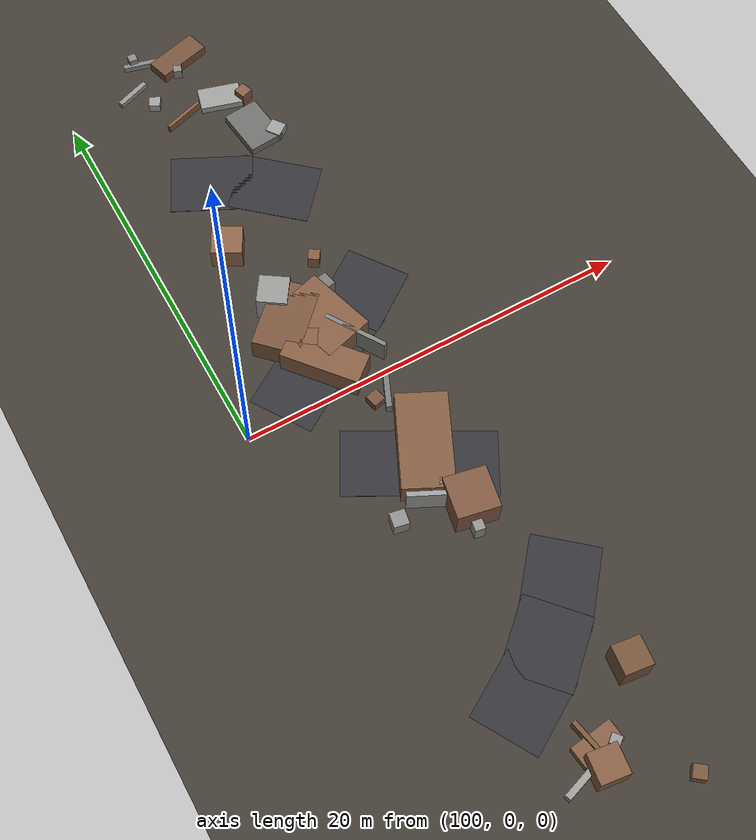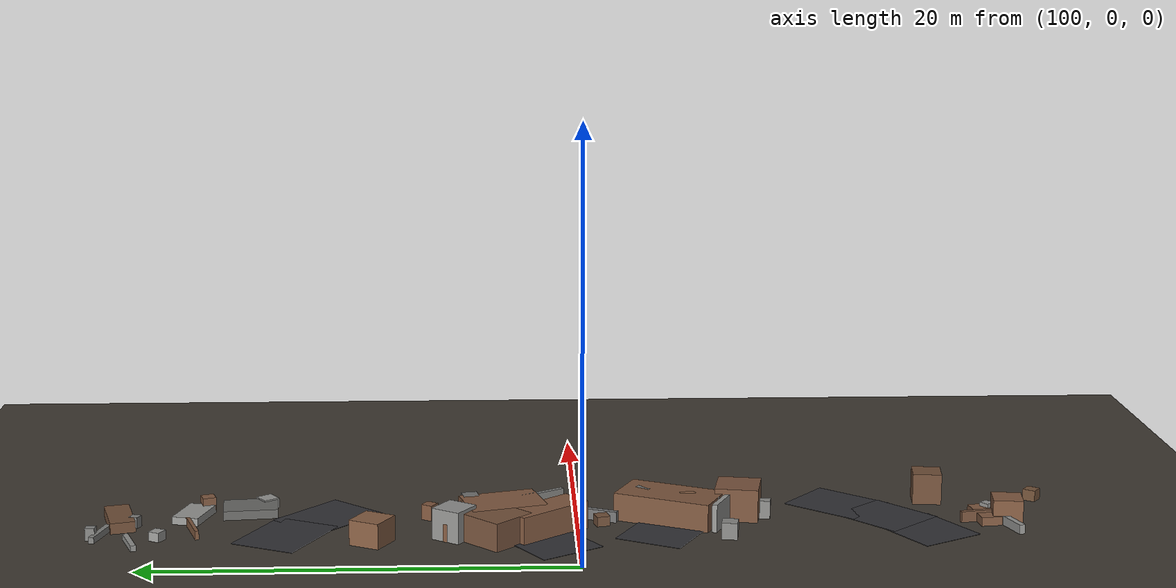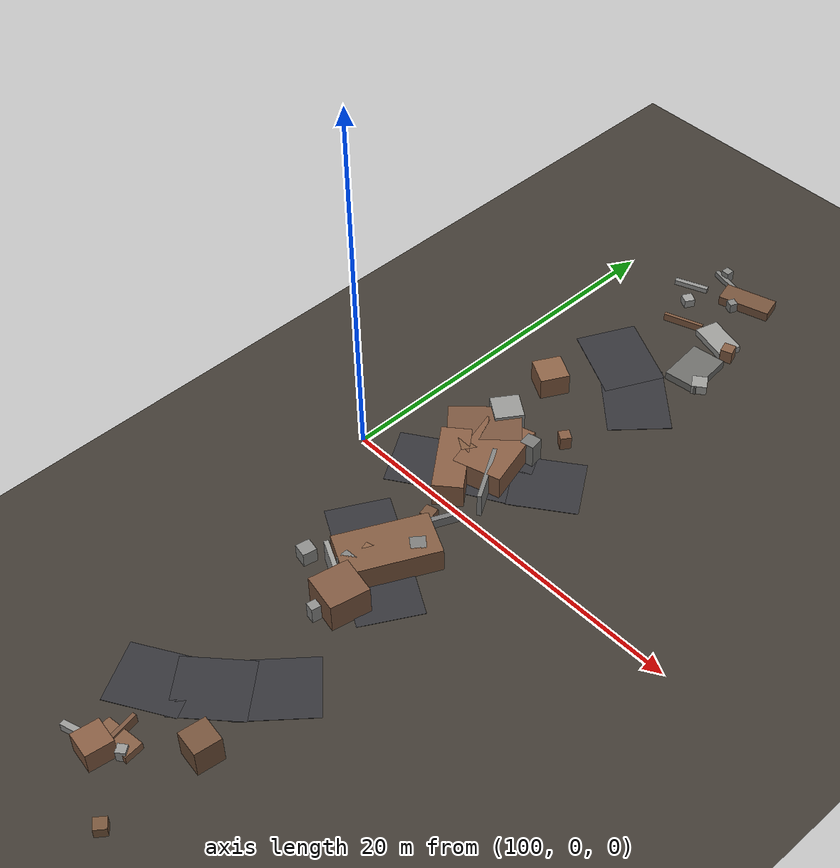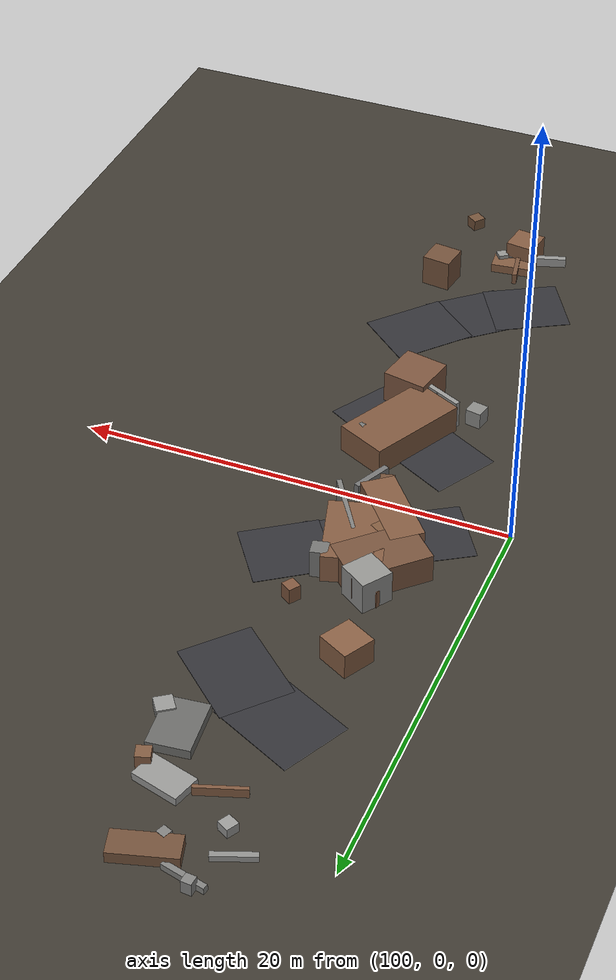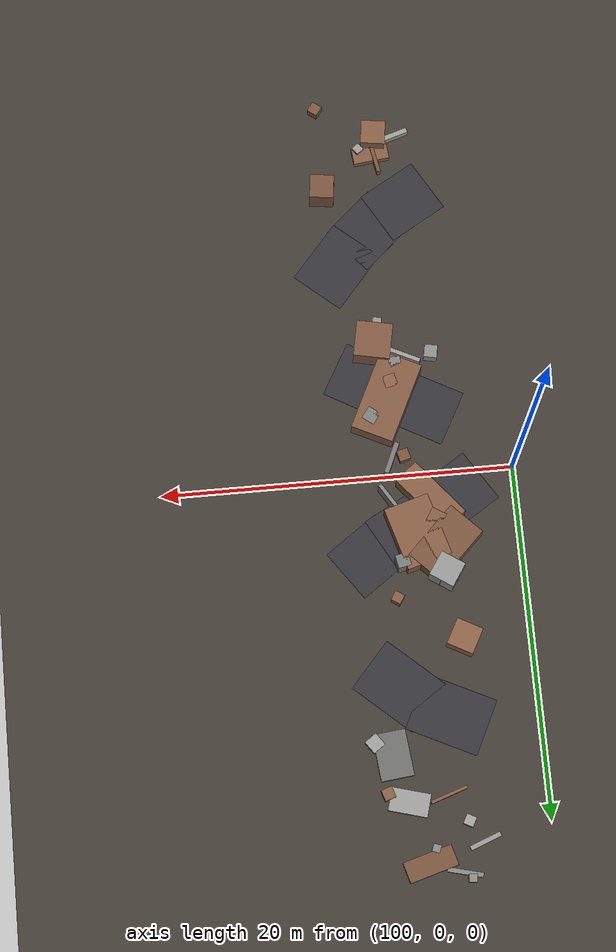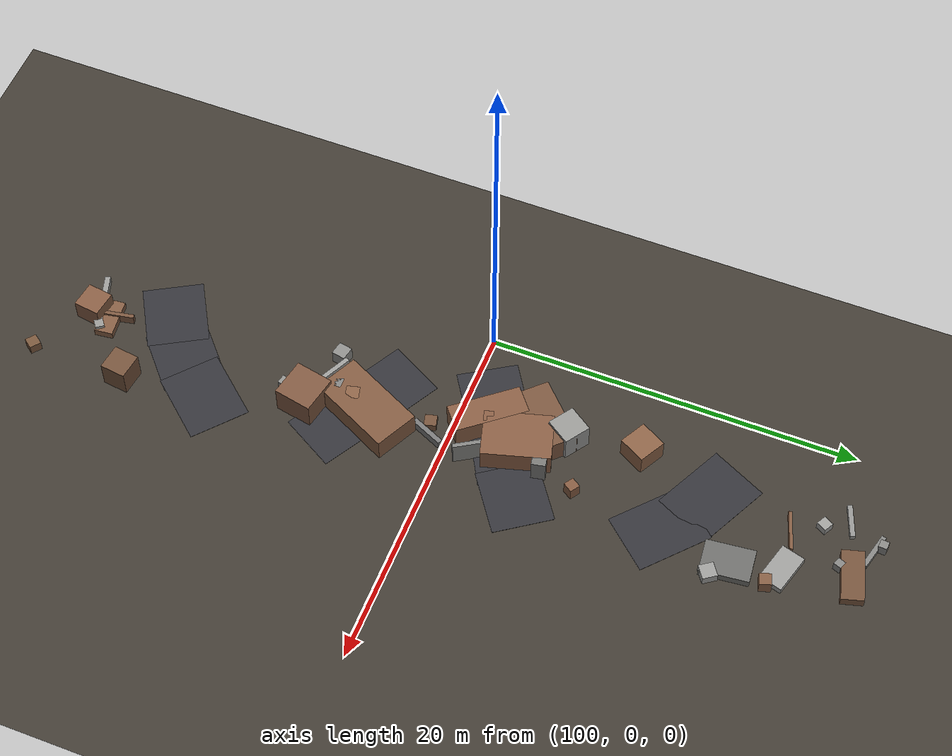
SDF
<sdf version="1.6">
 <world name="navitas_arena">
  <model name="ground_plane">
   <static>true</static>
   <link name="link">
    <collision name="collision">
     <geometry><plane><normal>0 0 1</normal><size>400 400</size></plane></geometry>
     <surface><friction><ode><mu>0.620</mu><mu2>0.620</mu2></ode></friction></surface>
    </collision>
    <visual name="visual">
     <cast_shadows>false</cast_shadows>
     <geometry><plane><normal>0 0 1</normal><size>400 400</size></plane></geometry>
     <material><ambient>0.250 0.230 0.200 1</ambient><diffuse>0.250 0.230 0.200 1</diffuse></material>
    </visual>
   </link>
  </model>
  <model name="road_zor_3_4">
   <static>true</static>
   <pose>104.655 -16.469 0.040 0 0 0.526</pose>
   <link name="link">
    <collision name="col"><geometry><box><size>3.635 3.280 0.020</size></box></geometry></collision>
    <visual name="vis">
     <geometry><box><size>3.635 3.280 0.020</size></box></geometry>
     <material><ambient>0.20 0.20 0.22 1</ambient><diffuse>0.20 0.20 0.22 1</diffuse></material>
    </visual>
   </link>
  </model>
  <model name="road_zor_3_5">
   <static>true</static>
   <pose>106.845 -14.880 0.040 0 0 0.731</pose>
   <link name="link">
    <collision name="col"><geometry><box><size>3.603 3.280 0.020</size></box></geometry></collision>
    <visual name="vis">
     <geometry><box><size>3.603 3.280 0.020</size></box></geometry>
     <material><ambient>0.20 0.20 0.22 1</ambient><diffuse>0.20 0.20 0.22 1</diffuse></material>
    </visual>
   </link>
  </model>
  <model name="road_zor_3_6">
   <static>true</static>
   <pose>108.842 -12.817 0.040 0 0 0.864</pose>
   <link name="link">
    <collision name="col"><geometry><box><size>3.953 3.280 0.020</size></box></geometry></collision>
    <visual name="vis">
     <geometry><box><size>3.953 3.280 0.020</size></box></geometry>
     <material><ambient>0.20 0.20 0.22 1</ambient><diffuse>0.20 0.20 0.22 1</diffuse></material>
    </visual>
   </link>
  </model>
  <model name="road_zor_3_9">
   <static>true</static>
   <pose>107.724 -5.667 0.040 0 0 2.625</pose>
   <link name="link">
    <collision name="col"><geometry><box><size>4.051 3.280 0.020</size></box></geometry></collision>
    <visual name="vis">
     <geometry><box><size>4.051 3.280 0.020</size></box></geometry>
     <material><ambient>0.20 0.20 0.22 1</ambient><diffuse>0.20 0.20 0.22 1</diffuse></material>
    </visual>
   </link>
  </model>
  <model name="road_zor_3_10">
   <static>true</static>
   <pose>104.917 -4.111 0.040 0 0 2.646</pose>
   <link name="link">
    <collision name="col"><geometry><box><size>4.169 3.280 0.020</size></box></geometry></collision>
    <visual name="vis">
     <geometry><box><size>4.169 3.280 0.020</size></box></geometry>
     <material><ambient>0.20 0.20 0.22 1</ambient><diffuse>0.20 0.20 0.22 1</diffuse></material>
    </visual>
   </link>
  </model>
  <model name="road_zor_3_13">
   <static>true</static>
   <pose>103.404 1.333 0.040 0 0 0.571</pose>
   <link name="link">
    <collision name="col"><geometry><box><size>3.776 3.280 0.020</size></box></geometry></collision>
    <visual name="vis">
     <geometry><box><size>3.776 3.280 0.020</size></box></geometry>
     <material><ambient>0.20 0.20 0.22 1</ambient><diffuse>0.20 0.20 0.22 1</diffuse></material>
    </visual>
   </link>
  </model>
  <model name="road_zor_3_14">
   <static>true</static>
   <pose>106.021 2.889 0.040 0 0 0.505</pose>
   <link name="link">
    <collision name="col"><geometry><box><size>4.117 3.280 0.020</size></box></geometry></collision>
    <visual name="vis">
     <geometry><box><size>4.117 3.280 0.020</size></box></geometry>
     <material><ambient>0.20 0.20 0.22 1</ambient><diffuse>0.20 0.20 0.22 1</diffuse></material>
    </visual>
   </link>
  </model>
  <model name="road_zor_3_15">
   <static>true</static>
   <pose>108.522 4.444 0.040 0 0 0.618</pose>
   <link name="link">
    <collision name="col"><geometry><box><size>3.583 3.280 0.020</size></box></geometry></collision>
    <visual name="vis">
     <geometry><box><size>3.583 3.280 0.020</size></box></geometry>
     <material><ambient>0.20 0.20 0.22 1</ambient><diffuse>0.20 0.20 0.22 1</diffuse></material>
    </visual>
   </link>
  </model>
  <model name="road_zor_3_18">
   <static>true</static>
   <pose>107.574 11.926 0.040 0 0 2.416</pose>
   <link name="link">
    <collision name="col"><geometry><box><size>4.138 3.280 0.020</size></box></geometry></collision>
    <visual name="vis">
     <geometry><box><size>4.138 3.280 0.020</size></box></geometry>
     <material><ambient>0.20 0.20 0.22 1</ambient><diffuse>0.20 0.20 0.22 1</diffuse></material>
    </visual>
   </link>
  </model>
  <model name="road_zor_3_19">
   <static>true</static>
   <pose>104.878 13.717 0.040 0 0 2.691</pose>
   <link name="link">
    <collision name="col"><geometry><box><size>4.197 3.280 0.020</size></box></geometry></collision>
    <visual name="vis">
     <geometry><box><size>4.197 3.280 0.020</size></box></geometry>
     <material><ambient>0.20 0.20 0.22 1</ambient><diffuse>0.20 0.20 0.22 1</diffuse></material>
    </visual>
   </link>
  </model>
  <model name="blk_zor_3_0_0">
   <static>true</static>
   <pose>106.268 -7.143 0.675 0 0 2.692</pose>
   <link name="link">
    <collision name="col"><geometry><box><size>3.512 0.243 1.350</size></box></geometry></collision>
    <visual name="vis">
     <geometry><box><size>3.512 0.243 1.350</size></box></geometry>
     <material><ambient>0.60 0.60 0.59 1</ambient><diffuse>0.60 0.60 0.59 1</diffuse></material>
    </visual>
   </link>
  </model>
  <model name="blk_zor_3_0_1">
   <static>true</static>
   <pose>106.129 -6.377 0.675 0 0 0.029</pose>
   <link name="link">
    <collision name="col"><geometry><box><size>0.681 0.681 1.350</size></box></geometry></collision>
    <visual name="vis">
     <geometry><box><size>0.681 0.681 1.350</size></box></geometry>
     <material><ambient>0.50 0.50 0.49 1</ambient><diffuse>0.50 0.50 0.49 1</diffuse></material>
    </visual>
   </link>
  </model>
  <model name="blk_zor_3_0_2">
   <static>true</static>
   <pose>106.498 -5.330 0.675 0 0 0.261</pose>
   <link name="link">
    <collision name="col"><geometry><box><size>0.713 0.713 1.350</size></box></geometry></collision>
    <visual name="vis">
     <geometry><box><size>0.713 0.713 1.350</size></box></geometry>
     <material><ambient>0.54 0.38 0.27 1</ambient><diffuse>0.54 0.38 0.27 1</diffuse></material>
    </visual>
   </link>
  </model>
  <model name="blk_zor_3_0_3">
   <static>true</static>
   <pose>106.768 -4.456 0.675 0 0 1.118</pose>
   <link name="link">
    <collision name="col"><geometry><box><size>4.788 2.481 1.350</size></box></geometry></collision>
    <visual name="vis">
     <geometry><box><size>4.788 2.481 1.350</size></box></geometry>
     <material><ambient>0.50 0.35 0.25 1</ambient><diffuse>0.50 0.35 0.25 1</diffuse></material>
    </visual>
   </link>
  </model>
  <model name="blk_zor_3_0_4">
   <static>true</static>
   <pose>107.229 -7.767 0.801 0 0 2.947</pose>
   <link name="link">
    <collision name="col"><geometry><box><size>2.072 2.072 1.602</size></box></geometry></collision>
    <visual name="vis">
     <geometry><box><size>2.072 2.072 1.602</size></box></geometry>
     <material><ambient>0.49 0.34 0.25 1</ambient><diffuse>0.49 0.34 0.25 1</diffuse></material>
    </visual>
   </link>
  </model>
  <model name="blk_zor_3_0_5">
   <static>true</static>
   <pose>107.744 -3.384 0.675 0 0 2.484</pose>
   <link name="link">
    <collision name="col"><geometry><box><size>0.771 0.771 1.350</size></box></geometry></collision>
    <visual name="vis">
     <geometry><box><size>0.771 0.771 1.350</size></box></geometry>
     <material><ambient>0.48 0.48 0.47 1</ambient><diffuse>0.48 0.48 0.47 1</diffuse></material>
    </visual>
   </link>
  </model>
  <model name="blk_zor_3_1_0">
   <static>true</static>
   <pose>106.743 5.083 0.675 0 0 0.196</pose>
   <link name="link">
    <collision name="col"><geometry><box><size>0.748 0.748 1.350</size></box></geometry></collision>
    <visual name="vis">
     <geometry><box><size>0.748 0.748 1.350</size></box></geometry>
     <material><ambient>0.46 0.46 0.45 1</ambient><diffuse>0.46 0.46 0.45 1</diffuse></material>
    </visual>
   </link>
  </model>
  <model name="blk_zor_3_1_1">
   <static>true</static>
   <pose>104.291 4.302 0.675 0 0 0.781</pose>
   <link name="link">
    <collision name="col"><geometry><box><size>3.689 2.314 1.350</size></box></geometry></collision>
    <visual name="vis">
     <geometry><box><size>3.689 2.314 1.350</size></box></geometry>
     <material><ambient>0.47 0.33 0.24 1</ambient><diffuse>0.47 0.33 0.24 1</diffuse></material>
    </visual>
   </link>
  </model>
  <model name="blk_zor_3_1_2">
   <static>true</static>
   <pose>104.677 2.822 0.675 0 0 2.589</pose>
   <link name="link">
    <collision name="col"><geometry><box><size>0.893 0.893 1.350</size></box></geometry></collision>
    <visual name="vis">
     <geometry><box><size>0.893 0.893 1.350</size></box></geometry>
     <material><ambient>0.51 0.36 0.25 1</ambient><diffuse>0.51 0.36 0.25 1</diffuse></material>
    </visual>
   </link>
  </model>
  <model name="blk_zor_3_1_3">
   <static>true</static>
   <pose>105.775 3.521 0.675 0 0 1.856</pose>
   <link name="link">
    <collision name="col"><geometry><box><size>3.651 2.608 1.350</size></box></geometry></collision>
    <visual name="vis">
     <geometry><box><size>3.651 2.608 1.350</size></box></geometry>
     <material><ambient>0.52 0.36 0.26 1</ambient><diffuse>0.52 0.36 0.26 1</diffuse></material>
    </visual>
   </link>
  </model>
  <model name="blk_zor_3_1_4">
   <static>true</static>
   <pose>106.776 2.053 0.675 0 0 2.129</pose>
   <link name="link">
    <collision name="col"><geometry><box><size>3.249 0.222 1.350</size></box></geometry></collision>
    <visual name="vis">
     <geometry><box><size>3.249 0.222 1.350</size></box></geometry>
     <material><ambient>0.50 0.50 0.49 1</ambient><diffuse>0.50 0.50 0.49 1</diffuse></material>
    </visual>
   </link>
  </model>
  <model name="blk_zor_3_1_5">
   <static>true</static>
   <pose>104.861 1.545 0.675 0 0 2.261</pose>
   <link name="link">
    <collision name="col"><geometry><box><size>3.952 1.555 1.350</size></box></geometry></collision>
    <visual name="vis">
     <geometry><box><size>3.952 1.555 1.350</size></box></geometry>
     <material><ambient>0.52 0.36 0.26 1</ambient><diffuse>0.52 0.36 0.26 1</diffuse></material>
    </visual>
   </link>
  </model>
  <model name="deb_zor_9">
   <static>true</static>
   <pose>105.338 -20.364 0.223 0 0 0.305</pose>
   <link name="link">
    <collision name="col"><geometry><box><size>2.824 0.294 0.447</size></box></geometry></collision>
    <visual name="vis">
     <geometry><box><size>2.824 0.294 0.447</size></box></geometry>
     <material><ambient>0.59 0.59 0.58 1</ambient><diffuse>0.59 0.59 0.58 1</diffuse></material>
    </visual>
   </link>
  </model>
  <model name="deb_zor_21">
   <static>true</static>
   <pose>105.449 18.101 0.216 0 0 0.327</pose>
   <link name="link">
    <collision name="col"><geometry><box><size>2.172 0.175 0.431</size></box></geometry></collision>
    <visual name="vis">
     <geometry><box><size>2.172 0.175 0.431</size></box></geometry>
     <material><ambient>0.50 0.35 0.25 1</ambient><diffuse>0.50 0.35 0.25 1</diffuse></material>
    </visual>
   </link>
  </model>
  <model name="deb_zor_25">
   <static>true</static>
   <pose>109.323 -17.303 0.757 0 0 1.447</pose>
   <link name="link">
    <collision name="col"><geometry><box><size>1.387 1.387 1.513</size></box></geometry></collision>
    <visual name="vis">
     <geometry><box><size>1.387 1.387 1.513</size></box></geometry>
     <material><ambient>0.45 0.32 0.23 1</ambient><diffuse>0.45 0.32 0.23 1</diffuse></material>
    </visual>
   </link>
  </model>
  <model name="deb_zor_36">
   <static>true</static>
   <pose>106.037 -20.522 0.593 0 0 3.007</pose>
   <link name="link">
    <collision name="col"><geometry><box><size>1.407 1.407 1.185</size></box></geometry></collision>
    <visual name="vis">
     <geometry><box><size>1.407 1.407 1.185</size></box></geometry>
     <material><ambient>0.52 0.36 0.26 1</ambient><diffuse>0.52 0.36 0.26 1</diffuse></material>
    </visual>
   </link>
  </model>
  <model name="deb_zor_41">
   <static>true</static>
   <pose>106.838 21.739 0.264 0 0 0.278</pose>
   <link name="link">
    <collision name="col"><geometry><box><size>2.815 1.180 0.528</size></box></geometry></collision>
    <visual name="vis">
     <geometry><box><size>2.815 1.180 0.528</size></box></geometry>
     <material><ambient>0.45 0.32 0.23 1</ambient><diffuse>0.45 0.32 0.23 1</diffuse></material>
    </visual>
   </link>
  </model>
  <model name="deb_zor_70">
   <static>true</static>
   <pose>107.218 7.036 0.375 0 0 2.558</pose>
   <link name="link">
    <collision name="col"><geometry><box><size>0.577 0.577 0.750</size></box></geometry></collision>
    <visual name="vis">
     <geometry><box><size>0.577 0.577 0.750</size></box></geometry>
     <material><ambient>0.51 0.35 0.25 1</ambient><diffuse>0.51 0.35 0.25 1</diffuse></material>
    </visual>
   </link>
  </model>
  <model name="deb_zor_79">
   <static>true</static>
   <pose>106.772 -1.043 0.262 0 0 1.152</pose>
   <link name="link">
    <collision name="col"><geometry><box><size>1.876 0.276 0.524</size></box></geometry></collision>
    <visual name="vis">
     <geometry><box><size>1.876 0.276 0.524</size></box></geometry>
     <material><ambient>0.46 0.46 0.46 1</ambient><diffuse>0.46 0.46 0.46 1</diffuse></material>
    </visual>
   </link>
  </model>
  <model name="deb_zor_86">
   <static>true</static>
   <pose>103.726 20.769 0.141 0 0 0.367</pose>
   <link name="link">
    <collision name="col"><geometry><box><size>1.835 0.256 0.282</size></box></geometry></collision>
    <visual name="vis">
     <geometry><box><size>1.835 0.256 0.282</size></box></geometry>
     <material><ambient>0.57 0.57 0.56 1</ambient><diffuse>0.57 0.57 0.56 1</diffuse></material>
    </visual>
   </link>
  </model>
  <model name="deb_zor_91">
   <static>true</static>
   <pose>109.238 14.979 0.257 0 0 2.194</pose>
   <link name="link">
    <collision name="col"><geometry><box><size>0.797 0.797 0.514</size></box></geometry></collision>
    <visual name="vis">
     <geometry><box><size>0.797 0.797 0.514</size></box></geometry>
     <material><ambient>0.60 0.60 0.59 1</ambient><diffuse>0.60 0.60 0.59 1</diffuse></material>
    </visual>
   </link>
  </model>
  <model name="deb_zor_93">
   <static>true</static>
   <pose>103.974 -7.037 0.400 0 0 1.381</pose>
   <link name="link">
    <collision name="col"><geometry><box><size>0.744 0.744 0.800</size></box></geometry></collision>
    <visual name="vis">
     <geometry><box><size>0.744 0.744 0.800</size></box></geometry>
     <material><ambient>0.54 0.54 0.53 1</ambient><diffuse>0.54 0.54 0.53 1</diffuse></material>
    </visual>
   </link>
  </model>
  <model name="deb_zor_129">
   <static>true</static>
   <pose>103.751 9.586 0.607 0 0 2.650</pose>
   <link name="link">
    <collision name="col"><geometry><box><size>1.545 1.545 1.213</size></box></geometry></collision>
    <visual name="vis">
     <geometry><box><size>1.545 1.545 1.213</size></box></geometry>
     <material><ambient>0.54 0.38 0.27 1</ambient><diffuse>0.54 0.38 0.27 1</diffuse></material>
    </visual>
   </link>
  </model>
  <model name="deb_zor_135">
   <static>true</static>
   <pose>106.985 -19.788 0.307 0 0 0.665</pose>
   <link name="link">
    <collision name="col"><geometry><box><size>0.481 0.481 0.615</size></box></geometry></collision>
    <visual name="vis">
     <geometry><box><size>0.481 0.481 0.615</size></box></geometry>
     <material><ambient>0.58 0.58 0.57 1</ambient><diffuse>0.58 0.58 0.57 1</diffuse></material>
    </visual>
   </link>
  </model>
  <model name="deb_zor_148">
   <static>true</static>
   <pose>109.290 -22.536 0.275 0 0 2.490</pose>
   <link name="link">
    <collision name="col"><geometry><box><size>0.627 0.627 0.549</size></box></geometry></collision>
    <visual name="vis">
     <geometry><box><size>0.627 0.627 0.549</size></box></geometry>
     <material><ambient>0.46 0.33 0.23 1</ambient><diffuse>0.46 0.33 0.23 1</diffuse></material>
    </visual>
   </link>
  </model>
  <model name="deb_zor_157">
   <static>true</static>
   <pose>103.892 5.978 0.426 0 0 2.781</pose>
   <link name="link">
    <collision name="col"><geometry><box><size>0.516 0.516 0.852</size></box></geometry></collision>
    <visual name="vis">
     <geometry><box><size>0.516 0.516 0.852</size></box></geometry>
     <material><ambient>0.49 0.34 0.24 1</ambient><diffuse>0.49 0.34 0.24 1</diffuse></material>
    </visual>
   </link>
  </model>
  <model name="deb_zor_162">
   <static>true</static>
   <pose>104.358 5.804 0.757 0 0 2.551</pose>
   <link name="link">
    <collision name="col"><geometry><box><size>1.495 1.495 1.515</size></box></geometry></collision>
    <visual name="vis">
     <geometry><box><size>1.495 1.495 1.515</size></box></geometry>
     <material><ambient>0.58 0.58 0.57 1</ambient><diffuse>0.58 0.58 0.57 1</diffuse></material>
    </visual>
   </link>
  </model>
  <model name="deb_zor_163">
   <static>true</static>
   <pose>106.083 -1.154 0.236 0 0 0.257</pose>
   <link name="link">
    <collision name="col"><geometry><box><size>0.650 0.650 0.472</size></box></geometry></collision>
    <visual name="vis">
     <geometry><box><size>0.650 0.650 0.472</size></box></geometry>
     <material><ambient>0.45 0.32 0.23 1</ambient><diffuse>0.45 0.32 0.23 1</diffuse></material>
    </visual>
   </link>
  </model>
  <model name="deb_zor_167">
   <static>true</static>
   <pose>108.305 15.700 0.222 0 0 1.679</pose>
   <link name="link">
    <collision name="col"><geometry><box><size>2.604 1.852 0.445</size></box></geometry></collision>
    <visual name="vis">
     <geometry><box><size>2.604 1.852 0.445</size></box></geometry>
     <material><ambient>0.42 0.42 0.41 1</ambient><diffuse>0.42 0.42 0.41 1</diffuse></material>
    </visual>
   </link>
  </model>
  <model name="deb_zor_170">
   <static>true</static>
   <pose>104.639 22.687 0.304 0 0 1.503</pose>
   <link name="link">
    <collision name="col"><geometry><box><size>0.451 0.451 0.609</size></box></geometry></collision>
    <visual name="vis">
     <geometry><box><size>0.451 0.451 0.609</size></box></geometry>
     <material><ambient>0.52 0.52 0.51 1</ambient><diffuse>0.52 0.52 0.51 1</diffuse></material>
    </visual>
   </link>
  </model>
  <model name="deb_zor_179">
   <static>true</static>
   <pose>106.279 -19.531 0.212 0 0 0.115</pose>
   <link name="link">
    <collision name="col"><geometry><box><size>2.095 1.002 0.424</size></box></geometry></collision>
    <visual name="vis">
     <geometry><box><size>2.095 1.002 0.424</size></box></geometry>
     <material><ambient>0.51 0.36 0.26 1</ambient><diffuse>0.51 0.36 0.26 1</diffuse></material>
    </visual>
   </link>
  </model>
  <model name="deb_zor_187">
   <static>true</static>
   <pose>104.470 19.595 0.225 0 0 2.645</pose>
   <link name="link">
    <collision name="col"><geometry><box><size>0.573 0.573 0.451</size></box></geometry></collision>
    <visual name="vis">
     <geometry><box><size>0.573 0.573 0.451</size></box></geometry>
     <material><ambient>0.61 0.61 0.60 1</ambient><diffuse>0.61 0.61 0.60 1</diffuse></material>
    </visual>
   </link>
  </model>
  <model name="deb_zor_194">
   <static>true</static>
   <pose>106.434 20.933 0.269 0 0 2.758</pose>
   <link name="link">
    <collision name="col"><geometry><box><size>0.432 0.432 0.538</size></box></geometry></collision>
    <visual name="vis">
     <geometry><box><size>0.432 0.432 0.538</size></box></geometry>
     <material><ambient>0.51 0.51 0.50 1</ambient><diffuse>0.51 0.51 0.50 1</diffuse></material>
    </visual>
   </link>
  </model>
  <model name="deb_zor_233">
   <static>true</static>
   <pose>108.771 17.793 0.371 0 0 0.330</pose>
   <link name="link">
    <collision name="col"><geometry><box><size>0.634 0.634 0.741</size></box></geometry></collision>
    <visual name="vis">
     <geometry><box><size>0.634 0.634 0.741</size></box></geometry>
     <material><ambient>0.51 0.36 0.26 1</ambient><diffuse>0.51 0.36 0.26 1</diffuse></material>
    </visual>
   </link>
  </model>
  <model name="deb_zor_234">
   <static>true</static>
   <pose>106.876 -9.038 0.444 0 0 1.391</pose>
   <link name="link">
    <collision name="col"><geometry><box><size>0.499 0.499 0.888</size></box></geometry></collision>
    <visual name="vis">
     <geometry><box><size>0.499 0.499 0.888</size></box></geometry>
     <material><ambient>0.55 0.55 0.54 1</ambient><diffuse>0.55 0.55 0.54 1</diffuse></material>
    </visual>
   </link>
  </model>
  <model name="deb_zor_239">
   <static>true</static>
   <pose>104.998 22.333 0.153 0 0 2.898</pose>
   <link name="link">
    <collision name="col"><geometry><box><size>1.980 0.258 0.307</size></box></geometry></collision>
    <visual name="vis">
     <geometry><box><size>1.980 0.258 0.307</size></box></geometry>
     <material><ambient>0.51 0.51 0.50 1</ambient><diffuse>0.51 0.51 0.50 1</diffuse></material>
    </visual>
   </link>
  </model>
  <model name="deb_zor_253">
   <static>true</static>
   <pose>107.651 18.330 0.188 0 0 2.871</pose>
   <link name="link">
    <collision name="col"><geometry><box><size>2.192 1.301 0.376</size></box></geometry></collision>
    <visual name="vis">
     <geometry><box><size>2.192 1.301 0.376</size></box></geometry>
     <material><ambient>0.60 0.60 0.59 1</ambient><diffuse>0.60 0.60 0.59 1</diffuse></material>
    </visual>
   </link>
  </model>
  <model name="deb_zor_263">
   <static>true</static>
   <pose>106.072 -19.325 0.266 0 0 1.760</pose>
   <link name="link">
    <collision name="col"><geometry><box><size>2.087 0.218 0.532</size></box></geometry></collision>
    <visual name="vis">
     <geometry><box><size>2.087 0.218 0.532</size></box></geometry>
     <material><ambient>0.47 0.33 0.24 1</ambient><diffuse>0.47 0.33 0.24 1</diffuse></material>
    </visual>
   </link>
  </model>
 </world>
</sdf>
